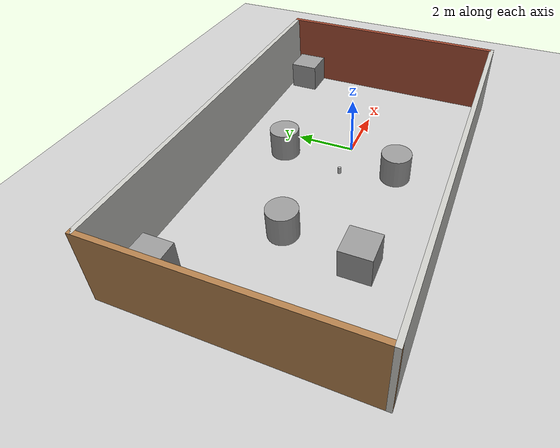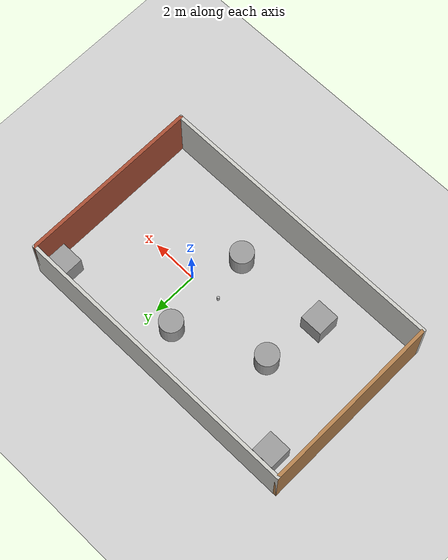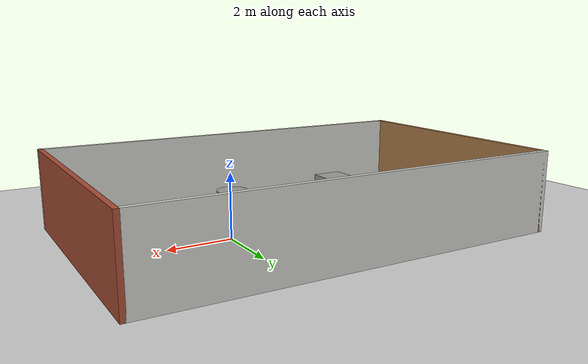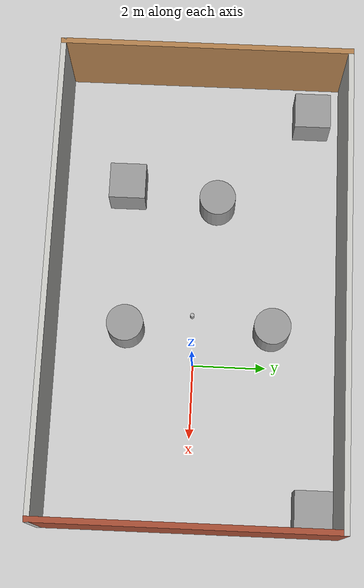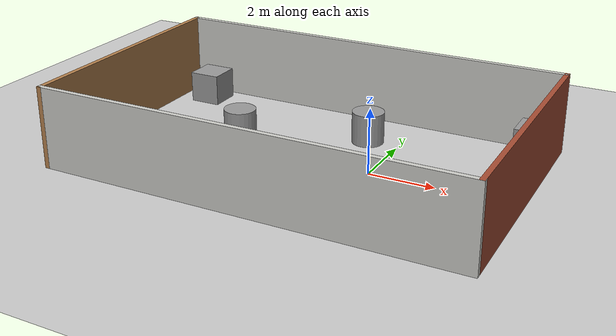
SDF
<sdf version="1.7">
 <world name="default">
  <light name="sun" type="directional">
   <pose>0 0 10 0 -0 0</pose>
   <diffuse>0.8 0.8 0.8 1</diffuse>
   <specular>0.2 0.2 0.2 1</specular>
   <attenuation>
    <range>1000</range>
    <constant>0.9</constant>
    <linear>0.01</linear>
    <quadratic>0.001</quadratic>
   </attenuation>
   <direction>-0.5 0.1 -0.9</direction>
   <spot><inner_angle>0</inner_angle><outer_angle>0</outer_angle><falloff>0</falloff></spot>
  </light>
  <model name="ground_plane">
   <static>1</static>
   <link name="link">
    <collision name="collision">
     <geometry><plane><normal>0 0 1</normal><size>100 100</size></plane></geometry>
     <surface>
      <contact><collide_bitmask>65535</collide_bitmask></contact>
      <friction><ode><mu>100</mu><mu2>50</mu2></ode></friction>
     </surface>
    </collision>
    <visual name="visual">
     <cast_shadows>0</cast_shadows>
     <geometry><plane><normal>0 0 1</normal><size>100 100</size></plane></geometry>
     <material>
      <script><uri>file://media/materials/scripts/gazebo.material</uri><name>Gazebo/Grey</name></script>
     </material>
    </visual>
   </link>
  </model>
  <gravity>0 0 -9.8</gravity>
  <magnetic_field>6e-06 2.3e-05 -4.2e-05</magnetic_field>
  <atmosphere type="adiabatic"/>
  <physics type="ode">
   <max_step_size>0.001</max_step_size>
   <real_time_factor>1</real_time_factor>
   <real_time_update_rate>1000</real_time_update_rate>
  </physics>
  <scene><ambient>0.4 0.4 0.4 1</ambient><background>0.7 0.7 0.7 1</background><shadows>1</shadows></scene>
  <spherical_coordinates>
   <surface_model>EARTH_WGS84</surface_model>
   <latitude_deg>0</latitude_deg>
   <longitude_deg>0</longitude_deg>
   <elevation>0</elevation>
   <heading_deg>0</heading_deg>
  </spherical_coordinates>
  <model name="box_house">
   <pose>-1.97643 0.05996 0 0 -0 0</pose>
   <link name="Wall_1">
    <collision name="Wall_1_Collision">
     <geometry><box><size>13 0.15 2.5</size></box></geometry>
     <pose>0 0 1.25 0 -0 0</pose>
    </collision>
    <visual name="Wall_1_Visual">
     <pose>0 0 1.25 0 -0 0</pose>
     <geometry><box><size>13 0.15 2.5</size></box></geometry>
     <material>
      <script><uri>file://media/materials/scripts/gazebo.material</uri><name>Gazebo/CeilingTiled</name></script>
      <ambient>1 1 1 1</ambient>
     </material>
     <meta><layer>0</layer></meta>
    </visual>
    <pose>0 3.925 0 0 -0 0</pose>
   </link>
   <link name="Wall_2">
    <collision name="Wall_2_Collision">
     <geometry><box><size>8 0.15 2.5</size></box></geometry>
     <pose>0 0 1.25 0 -0 0</pose>
    </collision>
    <visual name="Wall_2_Visual">
     <pose>0 0 1.25 0 -0 0</pose>
     <geometry><box><size>8 0.15 2.5</size></box></geometry>
     <material>
      <script><uri>file://media/materials/scripts/gazebo.material</uri><name>Gazebo/Bricks</name></script>
      <ambient>1 1 1 1</ambient>
     </material>
     <meta><layer>0</layer></meta>
    </visual>
    <pose>6.425 -0 0 0 -0 -1.5708</pose>
   </link>
   <link name="Wall_3">
    <collision name="Wall_3_Collision">
     <geometry><box><size>13 0.15 2.5</size></box></geometry>
     <pose>0 0 1.25 0 -0 0</pose>
    </collision>
    <visual name="Wall_3_Visual">
     <pose>0 0 1.25 0 -0 0</pose>
     <geometry><box><size>13 0.15 2.5</size></box></geometry>
     <material>
      <script><uri>file://media/materials/scripts/gazebo.material</uri><name>Gazebo/CeilingTiled</name></script>
      <ambient>1 1 1 1</ambient>
     </material>
     <meta><layer>0</layer></meta>
    </visual>
    <pose>0 -3.925 0 0 -0 3.14159</pose>
   </link>
   <link name="Wall_4">
    <collision name="Wall_4_Collision">
     <geometry><box><size>8 0.15 2.5</size></box></geometry>
     <pose>0 0 1.25 0 -0 0</pose>
    </collision>
    <visual name="Wall_4_Visual">
     <pose>0 0 1.25 0 -0 0</pose>
     <geometry><box><size>8 0.15 2.5</size></box></geometry>
     <material>
      <script><uri>file://media/materials/scripts/gazebo.material</uri><name>Gazebo/Wood</name></script>
      <ambient>1 1 1 1</ambient>
     </material>
     <meta><layer>0</layer></meta>
    </visual>
    <pose>-6.425 -0 0 0 -0 1.5708</pose>
   </link>
   <static>1</static>
  </model>
  <model name="unit_box">
   <pose>-7.27142 3.09748 0.5 0 -0 0</pose>
   <link name="link">
    <inertial>
     <mass>1</mass>
     <inertia>
      <ixx>0.166667</ixx>
      <ixy>0</ixy>
      <ixz>0</ixz>
      <iyy>0.166667</iyy>
      <iyz>0</iyz>
      <izz>0.166667</izz>
     </inertia>
    </inertial>
    <collision name="collision"><geometry><box><size>1 1 1</size></box></geometry></collision>
    <visual name="visual">
     <geometry><box><size>1 1 1</size></box></geometry>
     <material>
      <script><name>Gazebo/Grey</name><uri>file://media/materials/scripts/gazebo.material</uri></script>
     </material>
    </visual>
   </link>
  </model>
  <model name="unit_cylinder">
   <pose>-4.57746 0.509887 0.499992 -3e-06 2e-06 0</pose>
   <link name="link">
    <inertial>
     <mass>1</mass>
     <inertia><ixx>0.145833</ixx><ixy>0</ixy><ixz>0</ixz><iyy>0.145833</iyy><iyz>0</iyz><izz>0.125</izz></inertia>
    </inertial>
    <collision name="collision">
     <geometry><cylinder><radius>0.5</radius><length>1</length></cylinder></geometry>
    </collision>
    <visual name="visual">
     <geometry><cylinder><radius>0.5</radius><length>1</length></cylinder></geometry>
     <material>
      <script><name>Gazebo/Grey</name><uri>file://media/materials/scripts/gazebo.material</uri></script>
     </material>
    </visual>
   </link>
  </model>
  <model name="unit_box_0">
   <pose>-4.96406 -2.00352 0.5 -0 -0 -0</pose>
   <link name="link">
    <inertial>
     <mass>1</mass>
     <inertia>
      <ixx>0.166667</ixx>
      <ixy>0</ixy>
      <ixz>0</ixz>
      <iyy>0.166667</iyy>
      <iyz>0</iyz>
      <izz>0.166667</izz>
     </inertia>
    </inertial>
    <collision name="collision"><geometry><box><size>1 1 1</size></box></geometry></collision>
    <visual name="visual">
     <geometry><box><size>1 1 1</size></box></geometry>
     <material>
      <script><name>Gazebo/Grey</name><uri>file://media/materials/scripts/gazebo.material</uri></script>
     </material>
    </visual>
   </link>
  </model>
  <model name="unit_box_1">
   <pose>3.83311 3.30341 0.5 0 -0 0</pose>
   <link name="link">
    <inertial>
     <mass>1</mass>
     <inertia>
      <ixx>0.166667</ixx>
      <ixy>0</ixy>
      <ixz>0</ixz>
      <iyy>0.166667</iyy>
      <iyz>0</iyz>
      <izz>0.166667</izz>
     </inertia>
    </inertial>
    <collision name="collision"><geometry><box><size>1 1 1</size></box></geometry></collision>
    <visual name="visual">
     <geometry><box><size>1 1 1</size></box></geometry>
     <material>
      <script><name>Gazebo/Grey</name><uri>file://media/materials/scripts/gazebo.material</uri></script>
     </material>
    </visual>
   </link>
  </model>
  <model name="unit_cylinder_0">
   <pose>-0.988142 2.12658 0.499992 -3e-06 3e-06 0</pose>
   <link name="link">
    <inertial>
     <mass>1</mass>
     <inertia><ixx>0.145833</ixx><ixy>0</ixy><ixz>0</ixz><iyy>0.145833</iyy><iyz>0</iyz><izz>0.125</izz></inertia>
    </inertial>
    <collision name="collision">
     <geometry><cylinder><radius>0.5</radius><length>1</length></cylinder></geometry>
    </collision>
    <visual name="visual">
     <geometry><cylinder><radius>0.5</radius><length>1</length></cylinder></geometry>
     <material>
      <script><name>Gazebo/Grey</name><uri>file://media/materials/scripts/gazebo.material</uri></script>
     </material>
    </visual>
   </link>
  </model>
  <model name="unit_cylinder_1">
   <pose>-0.924421 -1.85671 0.499998 0 -4e-06 -0.061156</pose>
   <link name="link">
    <inertial>
     <mass>1</mass>
     <inertia><ixx>0.145833</ixx><ixy>0</ixy><ixz>0</ixz><iyy>0.145833</iyy><iyz>0</iyz><izz>0.125</izz></inertia>
    </inertial>
    <collision name="collision">
     <geometry><cylinder><radius>0.5</radius><length>1</length></cylinder></geometry>
    </collision>
    <visual name="visual">
     <geometry><cylinder><radius>0.5</radius><length>1</length></cylinder></geometry>
     <material>
      <script><name>Gazebo/Grey</name><uri>file://media/materials/scripts/gazebo.material</uri></script>
     </material>
    </visual>
   </link>
  </model>
  <model name="beer">
   <link name="link">
    <pose>0 0 0.115 0 -0 0</pose>
    <inertial>
     <mass>0.39</mass>
     <inertia><ixx>0.00058</ixx><ixy>0</ixy><ixz>0</ixz><iyy>0.00058</iyy><iyz>0</iyz><izz>0.00019</izz></inertia>
    </inertial>
    <collision name="collision">
     <geometry><cylinder><radius>0.055</radius><length>0.23</length></cylinder></geometry>
    </collision>
    <visual name="visual">
     <geometry><cylinder><radius>0.055</radius><length>0.23</length></cylinder></geometry>
     <material>
      <script>
       <uri>model://beer/materials/scripts</uri>
       <uri>model://beer/materials/textures</uri>
       <name>Beer/Diffuse</name>
      </script>
     </material>
    </visual>
   </link>
   <pose>-1.3813 -0.056333 -2e-06 0 -0 2.85133</pose>
  </model>
 </world>
</sdf>
